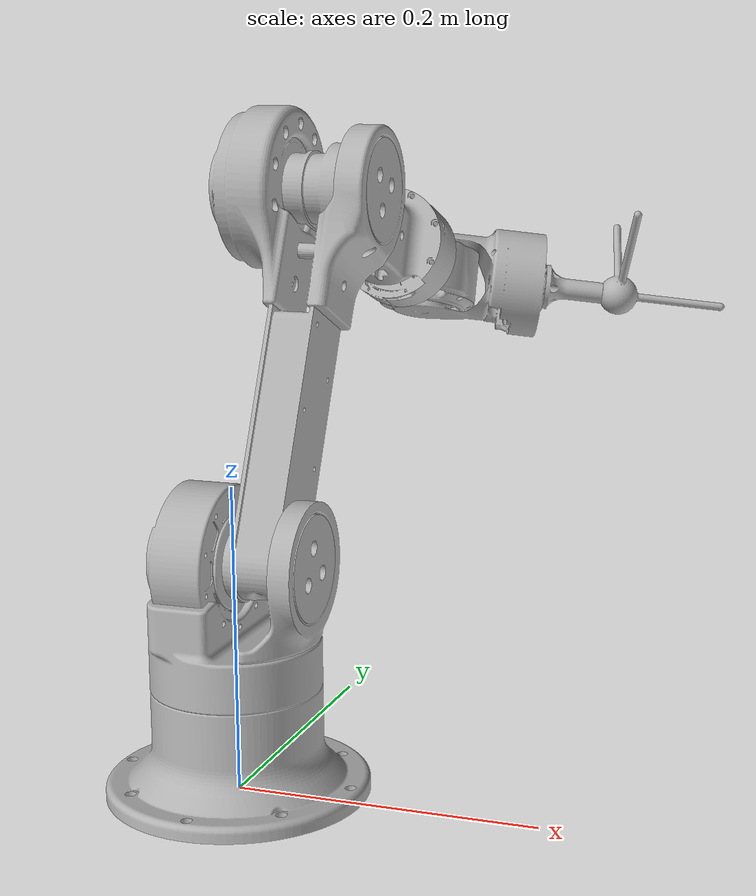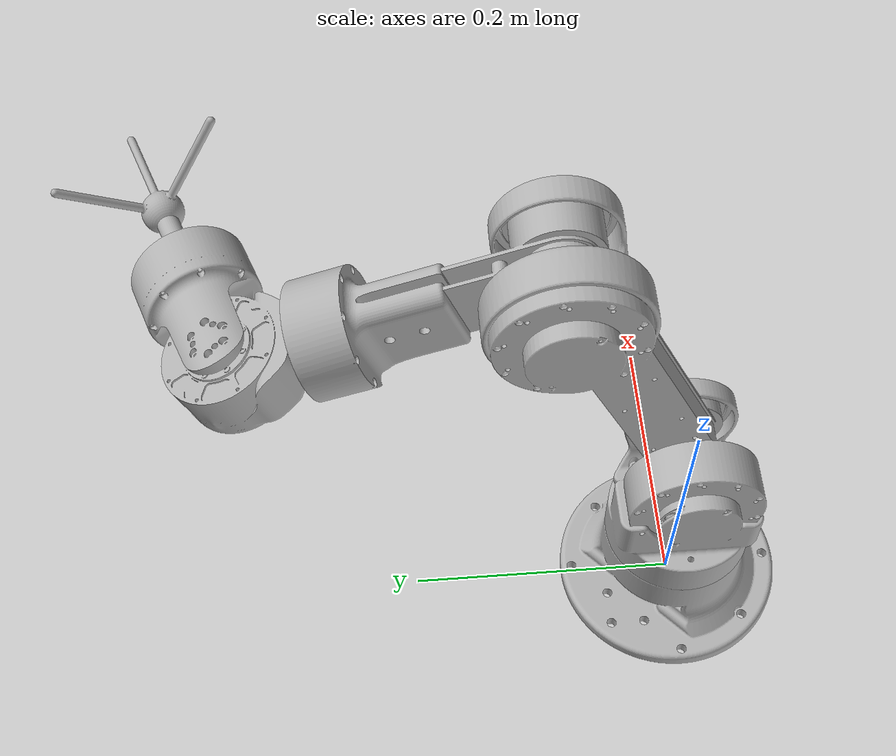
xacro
<?xml version="1.0" ?>
<robot name="_Main_Assembly_URDF" xmlns:xacro="http://www.ros.org/wiki/xacro">

<xacro:include filename="$(find _Main_Assembly_URDF_description)/urdf/materials.xacro" />
<xacro:include filename="$(find _Main_Assembly_URDF_description)/urdf/_Main_Assembly_URDF.trans" />
<xacro:include filename="$(find _Main_Assembly_URDF_description)/urdf/_Main_Assembly_URDF.gazebo" />
<link name="base_link">
  <inertial>
    <origin xyz="0.003328936839643353 -0.0035326254525801233 0.017280293529805195" rpy="0 0 0"/>
    <mass value="2.6135266490024827"/>
    <inertia ixx="0.005454" iyy="0.005485" izz="0.009241" ixy="-0.000271" iyz="2e-05" ixz="-1.9e-05"/>
  </inertial>
  <visual>
    <origin xyz="0 0 0" rpy="0 0 0"/>
    <geometry>
      <mesh filename="package://_Main_Assembly_URDF_description/meshes/base_link.stl" scale="0.001 0.001 0.001"/>
    </geometry>
    <material name="silver"/>
  </visual>
  <collision>
    <origin xyz="0 0 0" rpy="0 0 0"/>
    <geometry>
      <mesh filename="package://_Main_Assembly_URDF_description/meshes/base_link.stl" scale="0.001 0.001 0.001"/>
    </geometry>
  </collision>
</link>

<link name="Link_0_1">
  <inertial>
    <origin xyz="-0.0012497524084683297 0.0005637561129757995 0.034399710975383135" rpy="0 0 0"/>
    <mass value="3.7962768236554094"/>
    <inertia ixx="0.006509" iyy="0.006185" izz="0.005948" ixy="3.2e-05" iyz="-5.3e-05" ixz="0.000238"/>
  </inertial>
  <visual>
    <origin xyz="-0.0 -0.0 -0.069" rpy="0 0 0"/>
    <geometry>
      <mesh filename="package://_Main_Assembly_URDF_description/meshes/Link_0_1.stl" scale="0.001 0.001 0.001"/>
    </geometry>
    <material name="silver"/>
  </visual>
  <collision>
    <origin xyz="-0.0 -0.0 -0.069" rpy="0 0 0"/>
    <geometry>
      <mesh filename="package://_Main_Assembly_URDF_description/meshes/Link_0_1.stl" scale="0.001 0.001 0.001"/>
    </geometry>
  </collision>
</link>

<link name="Link_1_1">
  <inertial>
    <origin xyz="-0.03744802829896941 0.057980544776267885 0.12432920375898959" rpy="0 0 0"/>
    <mass value="4.0834910326590155"/>
    <inertia ixx="0.040926" iyy="0.034787" izz="0.010625" ixy="0.001929" iyz="-0.01439" ixz="0.004141"/>
  </inertial>
  <visual>
    <origin xyz="-0.055 0.0 -0.15215" rpy="0 0 0"/>
    <geometry>
      <mesh filename="package://_Main_Assembly_URDF_description/meshes/Link_1_1.stl" scale="0.001 0.001 0.001"/>
    </geometry>
    <material name="silver"/>
  </visual>
  <collision>
    <origin xyz="-0.055 0.0 -0.15215" rpy="0 0 0"/>
    <geometry>
      <mesh filename="package://_Main_Assembly_URDF_description/meshes/Link_1_1.stl" scale="0.001 0.001 0.001"/>
    </geometry>
  </collision>
</link>

<link name="Link_2_1">
  <inertial>
    <origin xyz="0.026575413033108307 0.07184260934640484 -0.025962646301484316" rpy="0 0 0"/>
    <mass value="0.35228153276512575"/>
    <inertia ixx="0.001801" iyy="0.000403" izz="0.001645" ixy="0.000156" iyz="0.000509" ixz="-5.6e-05"/>
  </inertial>
  <visual>
    <origin xyz="-0.0021 -0.105473 -0.378809" rpy="0 0 0"/>
    <geometry>
      <mesh filename="package://_Main_Assembly_URDF_description/meshes/Link_2_1.stl" scale="0.001 0.001 0.001"/>
    </geometry>
    <material name="silver"/>
  </visual>
  <collision>
    <origin xyz="-0.0021 -0.105473 -0.378809" rpy="0 0 0"/>
    <geometry>
      <mesh filename="package://_Main_Assembly_URDF_description/meshes/Link_2_1.stl" scale="0.001 0.001 0.001"/>
    </geometry>
  </collision>
</link>

<link name="Link_3_1">
  <inertial>
    <origin xyz="-0.0004311079663911026 0.04284662749046697 -0.014723887586099327" rpy="0 0 0"/>
    <mass value="1.2383473430987533"/>
    <inertia ixx="0.000895" iyy="0.000847" izz="0.001234" ixy="0.0" iyz="0.000179" ixz="0.0"/>
  </inertial>
  <visual>
    <origin xyz="-0.02255 -0.268921 -0.319143" rpy="0 0 0"/>
    <geometry>
      <mesh filename="package://_Main_Assembly_URDF_description/meshes/Link_3_1.stl" scale="0.001 0.001 0.001"/>
    </geometry>
    <material name="silver"/>
  </visual>
  <collision>
    <origin xyz="-0.02255 -0.268921 -0.319143" rpy="0 0 0"/>
    <geometry>
      <mesh filename="package://_Main_Assembly_URDF_description/meshes/Link_3_1.stl" scale="0.001 0.001 0.001"/>
    </geometry>
  </collision>
</link>

<link name="Link_4_1">
  <inertial>
    <origin xyz="0.05529361364908404 0.012483467285149874 -0.025021978080367435" rpy="0 0 0"/>
    <mass value="1.322679950265537"/>
    <inertia ixx="0.001179" iyy="0.00167" izz="0.001626" ixy="-0.000192" iyz="-1.5e-05" ixz="7.9e-05"/>
  </inertial>
  <visual>
    <origin xyz="-0.022101 -0.323641 -0.321417" rpy="0 0 0"/>
    <geometry>
      <mesh filename="package://_Main_Assembly_URDF_description/meshes/Link_4_1.stl" scale="0.001 0.001 0.001"/>
    </geometry>
    <material name="silver"/>
  </visual>
  <collision>
    <origin xyz="-0.022101 -0.323641 -0.321417" rpy="0 0 0"/>
    <geometry>
      <mesh filename="package://_Main_Assembly_URDF_description/meshes/Link_4_1.stl" scale="0.001 0.001 0.001"/>
    </geometry>
  </collision>
</link>

<link name="Link_EndEffector_1">
  <inertial>
    <origin xyz="0.042482534257022087 0.015241471147103447 -0.0012571698967583367" rpy="0 0 0"/>
    <mass value="0.25848065815444504"/>
    <inertia ixx="0.000113" iyy="0.000228" izz="0.00025" ixy="-4.7e-05" iyz="2e-06" ixz="3e-06"/>
  </inertial>
  <visual>
    <origin xyz="-0.109009 -0.346171 -0.290385" rpy="0 0 0"/>
    <geometry>
      <mesh filename="package://_Main_Assembly_URDF_description/meshes/Link_EndEffector_1.stl" scale="0.001 0.001 0.001"/>
    </geometry>
    <material name="silver"/>
  </visual>
  <collision>
    <origin xyz="-0.109009 -0.346171 -0.290385" rpy="0 0 0"/>
    <geometry>
      <mesh filename="package://_Main_Assembly_URDF_description/meshes/Link_EndEffector_1.stl" scale="0.001 0.001 0.001"/>
    </geometry>
  </collision>
</link>

<joint name="Revolute 9" type="continuous">
  <origin xyz="0.0 0.0 0.069" rpy="0 0 0"/>
  <parent link="base_link"/>
  <child link="Link_0_1"/>
  <axis xyz="0.0 0.0 1.0"/>
</joint>

<joint name="Revolute 10" type="continuous">
  <origin xyz="0.055 -0.0 0.08315" rpy="0 0 0"/>
  <parent link="Link_0_1"/>
  <child link="Link_1_1"/>
  <axis xyz="1.0 0.0 0.0"/>
</joint>

<joint name="Revolute 11" type="continuous">
  <origin xyz="-0.0529 0.105473 0.226659" rpy="0 0 0"/>
  <parent link="Link_1_1"/>
  <child link="Link_2_1"/>
  <axis xyz="1.0 -0.0 0.0"/>
</joint>

<joint name="Revolute 12" type="continuous">
  <origin xyz="0.02045 0.163448 -0.059666" rpy="0 0 0"/>
  <parent link="Link_2_1"/>
  <child link="Link_3_1"/>
  <axis xyz="0.0 0.939693 -0.34202"/>
</joint>

<joint name="Revolute 13" type="continuous">
  <origin xyz="-0.000449 0.05472 0.002274" rpy="0 0 0"/>
  <parent link="Link_3_1"/>
  <child link="Link_4_1"/>
  <axis xyz="0.0 0.34202 0.939693"/>
</joint>

<joint name="Revolute 15" type="continuous">
  <origin xyz="0.086908 0.02253 -0.031032" rpy="0 0 0"/>
  <parent link="Link_4_1"/>
  <child link="Link_EndEffector_1"/>
  <axis xyz="0.939693 0.321394 -0.116978"/>
</joint>

</robot>

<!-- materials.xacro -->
<robot name="_Main_Assembly_URDF" xmlns:xacro="http://www.ros.org/wiki/xacro" >

<material name="silver">
  <color rgba="0.700 0.700 0.700 1.000"/>
</material>

</robot>

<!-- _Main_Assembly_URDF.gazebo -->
<robot name="_Main_Assembly_URDF" xmlns:xacro="http://www.ros.org/wiki/xacro" >

<xacro:property name="body_color" value="Gazebo/Silver" />

<gazebo>
  <plugin name="control" filename="libgazebo_ros_control.so"/>
</gazebo>
<gazebo reference="base_link">
  <material>${body_color}</material>
  <mu1>0.2</mu1>
  <mu2>0.2</mu2>
  <selfCollide>true</selfCollide>
  <gravity>true</gravity>
</gazebo>

<gazebo reference="Link_0_1">
  <material>${body_color}</material>
  <mu1>0.2</mu1>
  <mu2>0.2</mu2>
  <selfCollide>true</selfCollide>
</gazebo>

<gazebo reference="Link_1_1">
  <material>${body_color}</material>
  <mu1>0.2</mu1>
  <mu2>0.2</mu2>
  <selfCollide>true</selfCollide>
</gazebo>

<gazebo reference="Link_2_1">
  <material>${body_color}</material>
  <mu1>0.2</mu1>
  <mu2>0.2</mu2>
  <selfCollide>true</selfCollide>
</gazebo>

<gazebo reference="Link_3_1">
  <material>${body_color}</material>
  <mu1>0.2</mu1>
  <mu2>0.2</mu2>
  <selfCollide>true</selfCollide>
</gazebo>

<gazebo reference="Link_4_1">
  <material>${body_color}</material>
  <mu1>0.2</mu1>
  <mu2>0.2</mu2>
  <selfCollide>true</selfCollide>
</gazebo>

<gazebo reference="Link_EndEffector_1">
  <material>${body_color}</material>
  <mu1>0.2</mu1>
  <mu2>0.2</mu2>
  <selfCollide>true</selfCollide>
</gazebo>

</robot>
